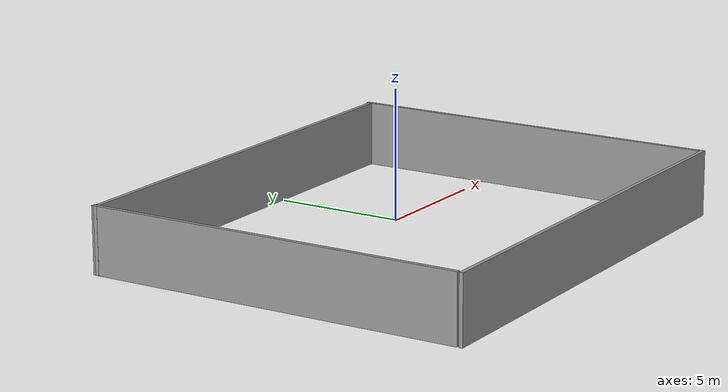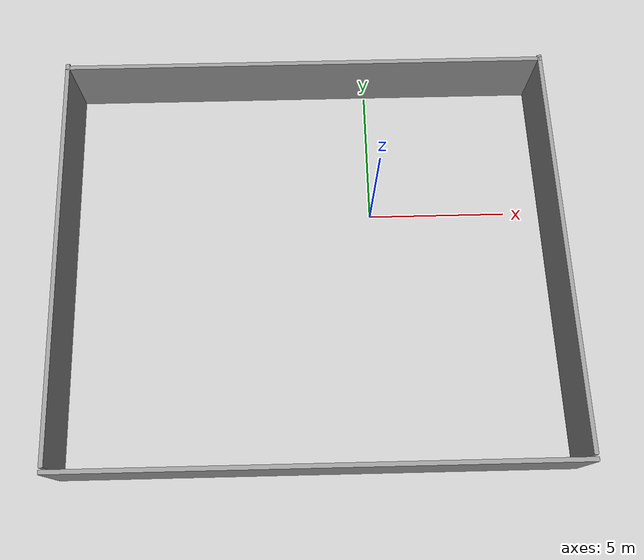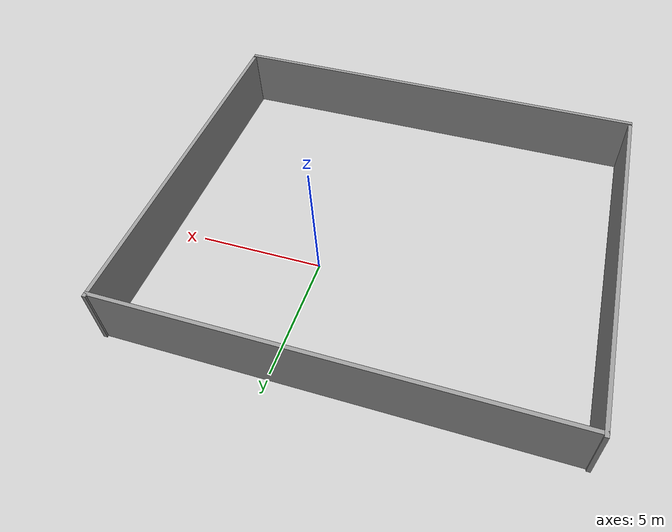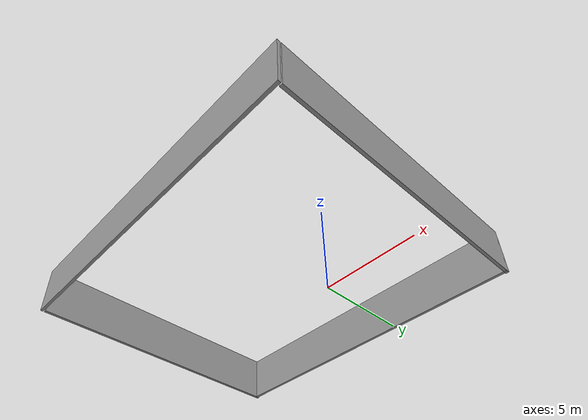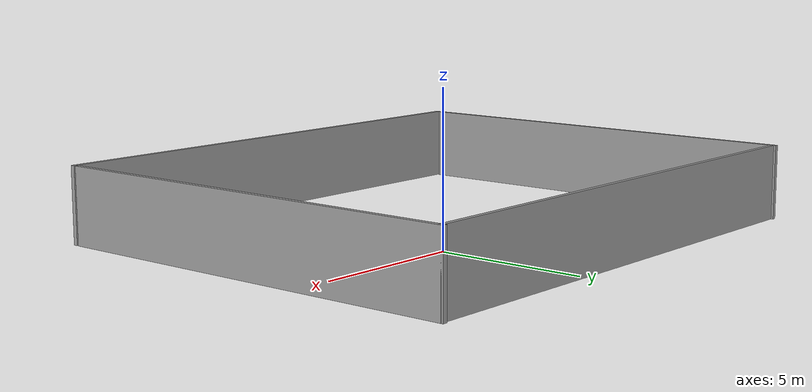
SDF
<?xml version='1.0'?>
<sdf version='1.7'>
  <model name='customWorld'>
    <pose>-2.26458 -2.0346 0 0 -0 0</pose>
    <link name='Wall_0'>
      <collision name='Wall_0_Collision'>
        <geometry>
          <box>
            <size>17.5 0.15 2.5</size>
          </box>
        </geometry>
        <pose>0 0 1.25 0 -0 0</pose>
      </collision>
      <visual name='Wall_0_Visual'>
        <pose>0 0 1.25 0 -0 0</pose>
        <geometry>
          <box>
            <size>17.5 0.15 2.5</size>
          </box>
        </geometry>
        <material>
          <script>
            <uri>file://media/materials/scripts/gazebo.material</uri>
            <name>Gazebo/Grey</name>
          </script>
          <ambient>1 1 1 1</ambient>
        </material>
        <meta>
          <layer>0</layer>
        </meta>
      </visual>
      <pose>-0.088019 7.18656 0 0 -0 0</pose>
    </link>
    <link name='Wall_2'>
      <collision name='Wall_2_Collision'>
        <geometry>
          <box>
            <size>14.454 0.15 2.5</size>
          </box>
        </geometry>
        <pose>0 0 1.25 0 -0 0</pose>
      </collision>
      <visual name='Wall_2_Visual'>
        <pose>0 0 1.25 0 -0 0</pose>
        <geometry>
          <box>
            <size>14.454 0.15 2.5</size>
          </box>
        </geometry>
        <material>
          <script>
            <uri>file://media/materials/scripts/gazebo.material</uri>
            <name>Gazebo/Grey</name>
          </script>
          <ambient>1 1 1 1</ambient>
        </material>
        <meta>
          <layer>0</layer>
        </meta>
      </visual>
      <pose>8.675 0.104482 0 0 -0 -1.55849</pose>
    </link>
    <link name='Wall_3'>
      <collision name='Wall_3_Collision'>
        <geometry>
          <box>
            <size>17.5 0.15 2.5</size>
          </box>
        </geometry>
        <pose>0 0 1.25 0 -0 0</pose>
      </collision>
      <visual name='Wall_3_Visual'>
        <pose>0 0 1.25 0 -0 0</pose>
        <geometry>
          <box>
            <size>17.5 0.15 2.5</size>
          </box>
        </geometry>
        <material>
          <script>
            <uri>file://media/materials/scripts/gazebo.material</uri>
            <name>Gazebo/Grey</name>
          </script>
          <ambient>1 1 1 1</ambient>
        </material>
        <meta>
          <layer>0</layer>
        </meta>
      </visual>
      <pose>0.088018 -7.25687 0 0 -0 3.14159</pose>
    </link>
    <link name='Wall_4'>
      <collision name='Wall_4_Collision'>
        <geometry>
          <box>
            <size>14.454 0.15 2.5</size>
          </box>
        </geometry>
        <pose>0 0 1.25 0 -0 0</pose>
      </collision>
      <visual name='Wall_4_Visual'>
        <pose>0 0 1.25 0 -0 0</pose>
        <geometry>
          <box>
            <size>14.454 0.15 2.5</size>
          </box>
        </geometry>
        <material>
          <script>
            <uri>file://media/materials/scripts/gazebo.material</uri>
            <name>Gazebo/Grey</name>
          </script>
          <ambient>1 1 1 1</ambient>
        </material>
        <meta>
          <layer>0</layer>
        </meta>
      </visual>
      <pose>-8.675 0.104482 0 0 -0 1.5831</pose>
    </link>
    <static>1</static>
  </model>
</sdf>
